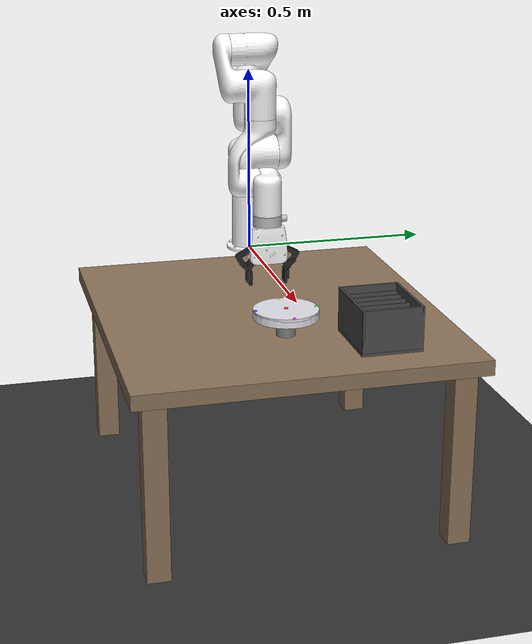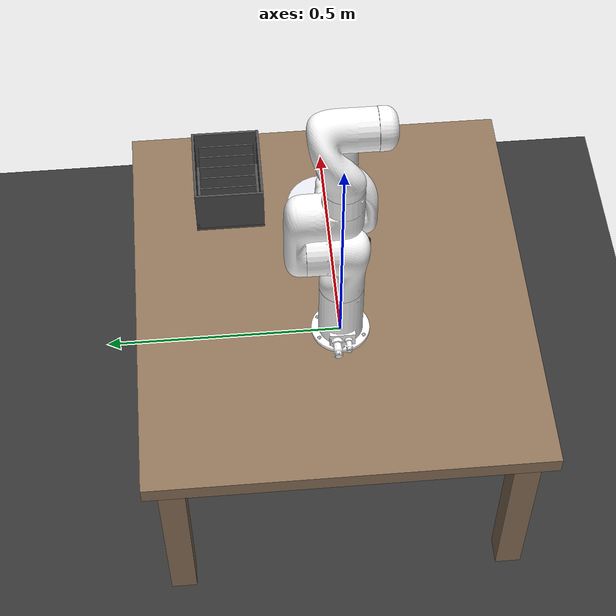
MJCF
<?xml version="1.0" encoding="utf-8"?>
<!--
  xArm7 Plate Dishwasher Task
  Uses MuJoCo Menagerie xarm7 model for proper gripper behavior.
-->
<mujoco model="xarm7_plate_dishwasher_task">
  <compiler angle="radian" autolimits="true" meshdir="xarm7_menagerie/assets/"/>

  <option timestep="0.002" gravity="0 0 -9.81" integrator="implicitfast" cone="elliptic">
    <flag contact="enable"/>
  </option>

  <visual>
    <headlight diffuse="0.6 0.6 0.6" ambient="0.3 0.3 0.3" specular="0 0 0"/>
    <rgba haze="0.15 0.25 0.35 1"/>
    <global azimuth="120" elevation="-20"/>
    <quality shadowsize="4096"/>
    <map force="0.1" zfar="30"/>
  </visual>

  <asset>
    <texture name="texplane" type="2d" builtin="checker" rgb1="0.15 0.15 0.15" rgb2="0.25 0.25 0.25" width="512" height="512"/>
    <material name="matplane" texture="texplane" texrepeat="6 6" reflectance="0.1"/>
    <texture name="wood" type="2d" builtin="flat" rgb1="0.55 0.45 0.35" rgb2="0.5 0.4 0.3" width="256" height="256"/>
    <material name="wood" texture="wood" reflectance="0.05"/>

    <!-- Task-specific materials -->
    <material name="plate_mat" rgba="0.92 0.92 0.96 1"/>
    <material name="rack_mat" rgba="0.3 0.3 0.3 1"/>
    <material name="stand_mat" rgba="0.5 0.5 0.5 1"/>
  </asset>

  <!--
    Include the Menagerie xarm7 model.
    xarm7_menagerie/ is a sibling folder to this XML file.
  -->
  <include file="xarm7_menagerie/xarm7.xml"/>

  <default>
    <default class="plate">
      <geom rgba="0.92 0.92 0.96 1" friction="0.8 0.02 0.01"
            solimp="0.95 0.99 0.001" solref="0.002 1" margin="0.001"/>
    </default>
    <default class="rack">
      <geom rgba="0.3 0.3 0.3 1" friction="0.6 0.01 0.01"/>
    </default>
    <default class="table">
      <geom rgba="0.55 0.45 0.35 1"/>
    </default>
  </default>

  <worldbody>
    <!-- Floor and lighting -->
    <geom name="floor" type="plane" size="2 2 0.1" pos="0 0 -0.63" material="matplane"/>
    <light pos="0.3 0 1.5" dir="0 0 -1" diffuse="0.8 0.8 0.8" specular="0.2 0.2 0.2"/>
    <light pos="-0.3 0.4 1.0" dir="0.2 -0.2 -0.9" diffuse="0.4 0.4 0.4"/>
    <light pos="0.5 -0.3 1.2" dir="-0.1 0.1 -0.9" diffuse="0.3 0.3 0.3"/>

    <!-- TABLE (adjusted Z for robot base at 0.12) -->
    <body name="table" pos="0.2 0 -0.12">
      <geom name="table_top" type="box" class="table" size="0.50 0.45 0.02" pos="0 0 -0.02" material="wood"/>
      <geom name="leg1" type="box" class="table" size="0.03 0.03 0.255" pos="-0.44 -0.39 -0.295"/>
      <geom name="leg2" type="box" class="table" size="0.03 0.03 0.255" pos="0.44 -0.39 -0.295"/>
      <geom name="leg3" type="box" class="table" size="0.03 0.03 0.255" pos="-0.44 0.39 -0.295"/>
      <geom name="leg4" type="box" class="table" size="0.03 0.03 0.255" pos="0.44 0.39 -0.295"/>
    </body>

    <!-- DISHWASHER RACK -->
    <body name="dishwasher_rack" pos="0.50 0.22 -0.116">
      <geom name="rack_base" class="rack" type="box" size="0.10 0.08 0.004"/>
      <geom name="slot0" class="rack" type="box" size="0.002 0.065 0.05" pos="-0.065 0 0.054"/>
      <geom name="slot1" class="rack" type="box" size="0.002 0.065 0.05" pos="-0.0325 0 0.054"/>
      <geom name="slot2" class="rack" type="box" size="0.002 0.065 0.05" pos="0 0 0.054"/>
      <geom name="slot3" class="rack" type="box" size="0.002 0.065 0.05" pos="0.0325 0 0.054"/>
      <geom name="slot4" class="rack" type="box" size="0.002 0.065 0.05" pos="0.065 0 0.054"/>
      <geom name="wall_l" class="rack" type="box" size="0.003 0.08 0.055" pos="-0.097 0 0.059"/>
      <geom name="wall_r" class="rack" type="box" size="0.003 0.08 0.055" pos="0.097 0 0.059"/>
      <geom name="wall_f" class="rack" type="box" size="0.10 0.003 0.055" pos="0 -0.077 0.059"/>
      <geom name="wall_b" class="rack" type="box" size="0.10 0.003 0.055" pos="0 0.077 0.059"/>
      <site name="target_slot" pos="0.016 0 0.01" size="0.012 0.05 0.003" rgba="0 1 0 0.4" type="box"/>
    </body>

    <!-- PLATE STAND -->
    <body name="plate_stand" pos="0.40 0.0 -0.12">
      <geom name="stand_pillar" type="cylinder" size="0.025 0.02" pos="0 0 0.02" material="stand_mat"/>
      <geom name="stand_top" type="cylinder" size="0.03 0.003" pos="0 0 0.043" material="stand_mat"/>
    </body>

    <!-- PLATE -->
    <body name="plate" pos="0.40 0.0 -0.063" euler="0 0 0">
      <freejoint name="plate_joint"/>
      <geom name="plate_base" class="plate" type="cylinder" size="0.085 0.010" mass="0.22"/>
      <geom name="plate_rim" type="cylinder" size="0.085 0.004" pos="0 0 0.010" rgba="0.88 0.88 0.92 1" mass="0.04"/>
      <site name="plate_center" pos="0 0 0.012" size="0.006" rgba="1 0 0 0.8"/>
      <site name="plate_top_edge" pos="0 0.08 0.012" size="0.005" rgba="0 1 0 0.8"/>
      <site name="plate_bottom_edge" pos="0 -0.08 0.012" size="0.005" rgba="0 0 1 0.8"/>
      <site name="plate_left_edge" pos="-0.08 0 0.012" size="0.005" rgba="1 1 0 0.8"/>
      <site name="plate_right_edge" pos="0.08 0 0.012" size="0.005" rgba="1 0 1 0.8"/>
    </body>
  </worldbody>

  <sensor>
    <framepos name="plate_pos" objtype="site" objname="plate_center"/>
    <framequat name="plate_quat" objtype="site" objname="plate_center"/>
    <framepos name="target_pos" objtype="site" objname="target_slot"/>
    <framepos name="tcp_pos" objtype="site" objname="link_tcp"/>
    <framequat name="tcp_quat" objtype="site" objname="link_tcp"/>
  </sensor>

  <keyframe>
    <key name="task_start" qpos="0 -0.247 0 0.909 0 1.15644 0 0 0 0 0 0 0   0.40 0.0 -0.063 1 0 0 0"
         ctrl="0 -0.247 0 0.909 0 1.15644 0 0"/>
  </keyframe>
</mujoco>

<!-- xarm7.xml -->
<mujoco model="xarm7">
  <compiler angle="radian" autolimits="true" meshdir="assets"/>

  <option integrator="implicitfast"/>

  <asset>
    <material name="white" rgba="1 1 1 1"/>
    <material name="gray" rgba="0.753 0.753 0.753 1"/>
    <material name="black" rgba="0.149 0.149 0.149 1"/>

    <mesh file="link_base.stl"/>
    <mesh file="link1.stl"/>
    <mesh file="link2.stl"/>
    <mesh file="link3.stl"/>
    <mesh file="link4.stl"/>
    <mesh file="link5.stl"/>
    <mesh file="link6.stl"/>
    <mesh file="link7.stl"/>
    <mesh file="end_tool.stl"/>
    <mesh file="base_link.stl"/>
    <mesh file="left_outer_knuckle.stl"/>
    <mesh file="left_finger.stl"/>
    <mesh file="left_inner_knuckle.stl"/>
    <mesh file="right_outer_knuckle.stl"/>
    <mesh file="right_finger.stl"/>
    <mesh file="right_inner_knuckle.stl"/>
  </asset>

  <default>
    <default class="xarm7">
      <geom type="mesh" material="white"/>
      <joint axis="0 0 1" armature="0.1" range="-6.28319 6.28319" frictionloss="1"/>
      <general biastype="affine" ctrlrange="-6.28319 6.28319"/>
      <default class="size1">
        <joint damping="10"/>
        <general gainprm="1500" biasprm="0 -1500 -150" forcerange="-50 50"/>
      </default>
      <default class="size2">
        <joint damping="5"/>
        <general gainprm="1000" biasprm="0 -1000 -100" forcerange="-30 30"/>
      </default>
      <default class="size3">
        <joint damping="2"/>
        <general gainprm="800" biasprm="0 -800 -80" forcerange="-20 20"/>
      </default>
      <default class="spring_link">
        <joint range="0 0.85" stiffness="0.05" springref="2.62" damping="0.00125"/>
      </default>
      <default class="driver">
        <joint range="0 0.85" armature="0.005" damping="0.1" solreflimit="0.005 1"/>
      </default>
      <default class="follower">
        <joint range="0 0.85" solreflimit="0.005 1"/>
      </default>
      <default class="visual">
        <geom type="mesh" contype="0" conaffinity="0" group="2"/>
      </default>
      <default class="collision">
        <geom type="mesh" group="3"/>
        <default class="pad_box1">
          <geom type="box" friction="0.7" solimp="0.95 0.99 0.001" solref="0.004 1" mass="0" priority="1" size="0.015 0.002 0.0095" rgba="0.0 0.1 0.7 1"/>
        </default>
        <default class="pad_box2">
          <geom type="box" friction="0.6" solimp="0.95 0.99 0.001" solref="0.004 1" mass="0" priority="1" size="0.015 0.002 0.0095" rgba="0.0 0.5 0.5 1"/>
        </default>
      </default>
      <site size="0.001" rgba="1 0 0 1" group="4"/>
    </default>
  </default>

  <worldbody>
    <!-- Base frame now at world origin (0, 0, 0) -->
    <body name="link_base" pos="0 0 0" childclass="xarm7">
      <inertial pos="-0.021131 -0.0016302 0.056488" quat="0.696843 0.20176 0.10388 0.680376" mass="0.88556"
        diaginertia="0.00382023 0.00335282 0.00167725"/>
      <geom mesh="link_base"/>
      <body name="link1" pos="0 0 0.267">
        <inertial pos="-0.0002 0.02905 -0.01233" quat="0.978953 -0.202769 -0.00441617 -0.0227264" mass="2.382"
          diaginertia="0.00569127 0.00533384 0.00293865"/>
        <joint name="joint1" class="size1"/>
        <geom mesh="link1"/>
        <body name="link2" quat="1 -1 0 0">
          <inertial pos="0.00022 -0.12856 0.01735" quat="0.50198 0.86483 -0.00778841 0.00483285" mass="1.869"
            diaginertia="0.00959898 0.00937717 0.00201315"/>
          <joint name="joint2" range="-2.059 2.0944" class="size1"/>
          <geom mesh="link2"/>
          <body name="link3" pos="0 -0.293 0" quat="1 1 0 0">
            <inertial pos="0.0466 -0.02463 -0.00768" quat="0.913819 0.289775 0.281481 -0.0416455" mass="1.6383"
              diaginertia="0.00351721 0.00294089 0.00195868"/>
            <joint name="joint3" class="size2"/>
            <geom mesh="link3"/>
            <body name="link4" pos="0.0525 0 0" quat="1 1 0 0">
              <inertial pos="0.07047 -0.11575 0.012" quat="0.422108 0.852026 -0.126025 0.282832" mass="1.7269"
                diaginertia="0.00657137 0.00647948 0.00186763"/>
              <joint name="joint4" range="-0.19198 3.927" class="size2"/>
              <geom mesh="link4"/>
              <body name="link5" pos="0.0775 -0.3425 0" quat="1 1 0 0">
                <inertial pos="-0.00032 0.01604 -0.026" quat="0.999311 -0.0304457 0.000577067 0.0212082" mass="1.3203"
                  diaginertia="0.00534729 0.00499076 0.0013489"/>
                <joint name="joint5" class="size2"/>
                <geom mesh="link5"/>
                <body name="link6" quat="1 1 0 0">
                  <inertial pos="0.06469 0.03278 0.02141" quat="-0.217672 0.772419 0.16258 0.574069" mass="1.325"
                    diaginertia="0.00245421 0.00221646 0.00107273"/>
                  <joint name="joint6" range="-1.69297 3.14159" class="size3"/>
                  <geom mesh="link6"/>
                  <body name="link7" pos="0.076 0.097 0" quat="1 -1 0 0">
                    <inertial pos="0 -0.00677 -0.01098" quat="0.487612 0.512088 -0.512088 0.487612" mass="0.17"
                      diaginertia="0.000132176 9.3e-05 5.85236e-05"/>
                    <joint name="joint7" class="size3"/>
                    <geom material="gray" mesh="end_tool"/>
                    <body name="xarm_gripper_base_link" quat="0 0 0 1">
                      <inertial pos="-0.00065489 -0.0018497 0.048028" quat="0.997403 -0.0717512 -0.0061836 0.000477479"
                        mass="0.54156" diaginertia="0.000471093 0.000332307 0.000254799"/>
                      <geom mesh="base_link"/>
                      <body name="left_outer_knuckle" pos="0 0.035 0.059098">
                        <inertial pos="0 0.021559 0.015181" quat="0.47789 0.87842 0 0" mass="0.033618"
                          diaginertia="1.9111e-05 1.79089e-05 1.90167e-06"/>
                        <joint name="left_driver_joint" axis="1 0 0" class="driver"/>
                        <geom material="black" mesh="left_outer_knuckle"/>
                        <body name="left_finger" pos="0 0.035465 0.042039">
                          <inertial pos="0 -0.016413 0.029258" quat="0.697634 0.115353 -0.115353 0.697634"
                            mass="0.048304" diaginertia="1.88037e-05 1.7493e-05 3.56792e-06"/>
                          <joint name="left_finger_joint" axis="-1 0 0" class="follower"/>
                          <geom class="visual" material="black" mesh="left_finger"/>
                          <geom class="pad_box1" name="left_finger_pad_1" pos="0 -0.024003 0.032"/>
                          <geom class="pad_box2" name="left_finger_pad_2" pos="0 -0.024003 0.050"/>
                        </body>
                      </body>
                      <body name="left_inner_knuckle" pos="0 0.02 0.074098">
                        <inertial pos="1.86601e-06 0.0220468 0.0261335" quat="0.664139 -0.242732 0.242713 0.664146"
                          mass="0.0230126" diaginertia="8.34216e-06 6.0949e-06 2.75601e-06"/>
                        <joint name="left_inner_knuckle_joint" axis="1 0 0" class="spring_link"/>
                        <geom material="black" mesh="left_inner_knuckle"/>
                      </body>
                      <body name="right_outer_knuckle" pos="0 -0.035 0.059098">
                        <inertial pos="0 -0.021559 0.015181" quat="0.87842 0.47789 0 0" mass="0.033618"
                          diaginertia="1.9111e-05 1.79089e-05 1.90167e-06"/>
                        <joint name="right_driver_joint" axis="-1 0 0" class="driver"/>
                        <geom material="black" mesh="right_outer_knuckle"/>
                        <body name="right_finger" pos="0 -0.035465 0.042039">
                          <inertial pos="0 0.016413 0.029258" quat="0.697634 -0.115356 0.115356 0.697634"
                            mass="0.048304" diaginertia="1.88038e-05 1.7493e-05 3.56779e-06"/>
                          <joint name="right_finger_joint" axis="1 0 0" class="follower"/>
                          <geom class="visual" material="black" mesh="right_finger"/>
                          <geom class="pad_box1" name="right_finger_pad_1" pos="0 0.024003 0.032"/>
                          <geom class="pad_box2" name="right_finger_pad_2" pos="0 0.024003 0.050"/>
                        </body>
                      </body>
                      <body name="right_inner_knuckle" pos="0 -0.02 0.074098">
                        <inertial pos="1.866e-06 -0.022047 0.026133" quat="0.66415 0.242702 -0.242721 0.664144"
                          mass="0.023013" diaginertia="8.34209e-06 6.0949e-06 2.75601e-06"/>
                        <joint name="right_inner_knuckle_joint" axis="-1 0 0" class="spring_link"/>
                        <geom material="black" mesh="right_inner_knuckle"/>
                      </body>
                      <site name="link_tcp" pos="0 0 .172"/>
                    </body>
                  </body>
                </body>
              </body>
            </body>
          </body>
        </body>
      </body>
    </body>
  </worldbody>

  <contact>
    <exclude body1="right_inner_knuckle" body2="right_outer_knuckle"/>
    <exclude body1="right_inner_knuckle" body2="right_finger"/>
    <exclude body1="left_inner_knuckle" body2="left_outer_knuckle"/>
    <exclude body1="left_inner_knuckle" body2="left_finger"/>
  </contact>

  <tendon>
    <fixed name="split">
      <joint joint="right_driver_joint" coef="0.5"/>
      <joint joint="left_driver_joint" coef="0.5"/>
    </fixed>
  </tendon>

  <equality>
    <connect anchor="0 0.015 0.015" body1="right_finger" body2="right_inner_knuckle" solref="0.005 1"/>
    <connect anchor="0 -0.015 0.015" body1="left_finger" body2="left_inner_knuckle" solref="0.005 1"/>
    <joint joint1="left_driver_joint" joint2="right_driver_joint" polycoef="0 1 0 0 0" solref="0.005 1"/>
  </equality>

  <actuator>
    <general name="act1" joint="joint1" class="size1"/>
    <general name="act2" joint="joint2" class="size1" ctrlrange="-2.059 2.0944"/>
    <general name="act3" joint="joint3" class="size2"/>
    <general name="act4" joint="joint4" class="size2" ctrlrange="-0.19198 3.927"/>
    <general name="act5" joint="joint5" class="size2"/>
    <general name="act6" joint="joint6" class="size3" ctrlrange="-1.69297 3.14159"/>
    <general name="act7" joint="joint7" class="size3"/>
    <general name="gripper" tendon="split" forcerange="-50 50" ctrlrange="0 255" biastype="affine" gainprm="0.333"
      biasprm="0 -100 -10"/>
  </actuator>

  <keyframe>
  </keyframe>
</mujoco>
